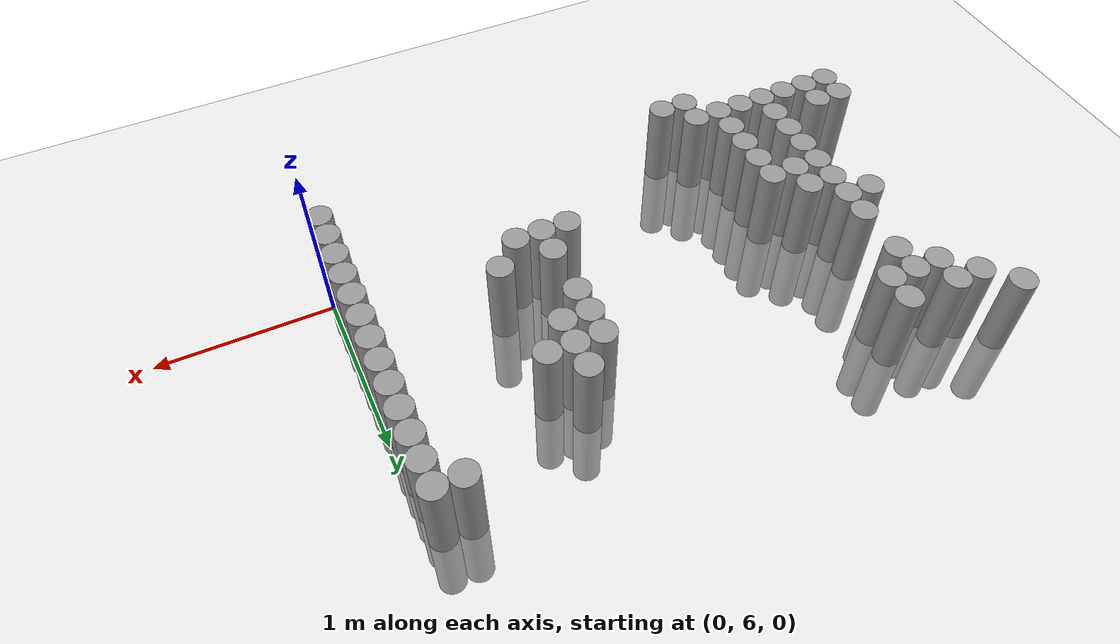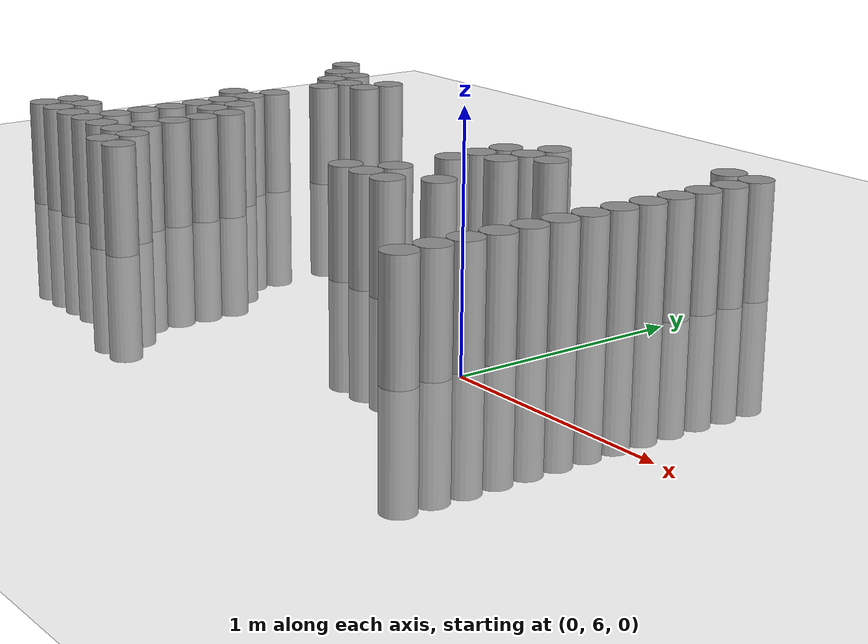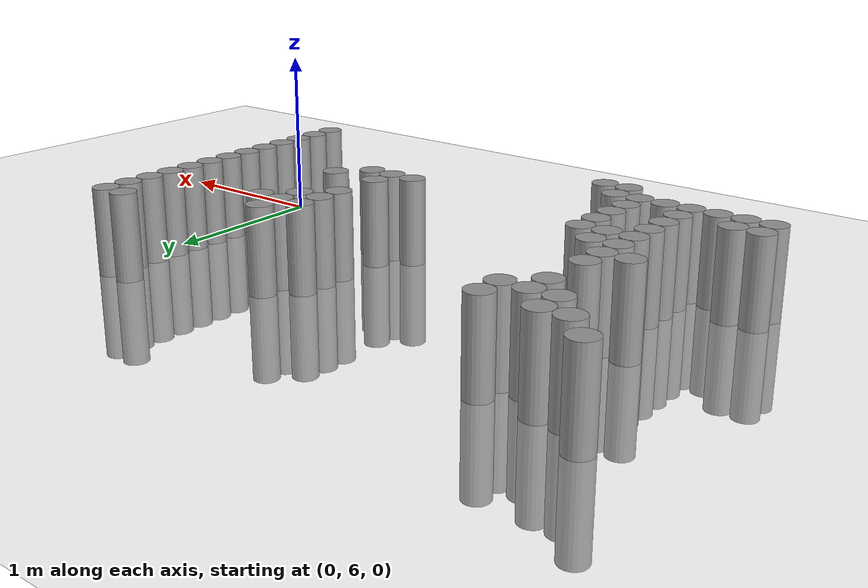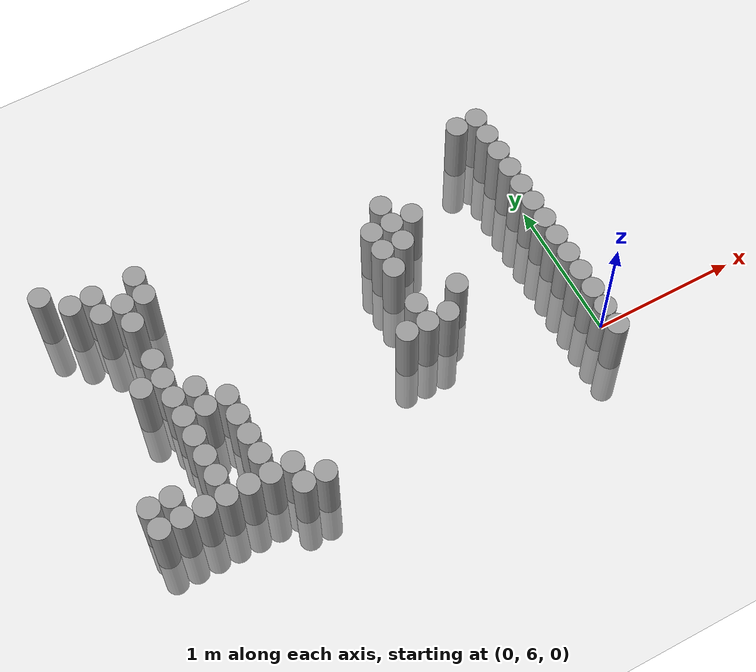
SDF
<sdf version="1.6">
 <world name="default">
  <model name="ground_plane">
   <static>1</static>
   <static>1</static>
   <link name="link">
    <collision name="collision">
     <geometry><plane><normal>0 0 1</normal><size>100 100</size></plane></geometry>
     <surface><friction><ode><mu>100</mu><mu2>50</mu2></ode></friction></surface>
    </collision>
    <visual name="visual">
     <cast_shadows>0</cast_shadows>
     <geometry><plane><normal>0 0 1</normal><size>100 100</size></plane></geometry>
     <material>
      <script><uri>file://media/materials/scripts/gazebo.material</uri><name>Gazebo/Grey</name></script>
     </material>
    </visual>
   </link>
  </model>
  <model name="unit_cylinder_172">
   <static>1</static>
   <pose>-3.225000 5.925000 0.000000 0.000000 0.000000 0.000000</pose>
   <link name="link">
    <inertial>
     <mass>1</mass>
     <inertia><ixx>0.145833</ixx><ixy>0</ixy><ixz>0</ixz><iyy>0.145833</iyy><iyz>0</iyz><izz>0.125</izz></inertia>
    </inertial>
    <collision name="collision">
     <geometry><cylinder><radius>0.075000</radius><length>1</length></cylinder></geometry>
    </collision>
    <visual name="visual">
     <geometry><cylinder><radius>0.075000</radius><length>1</length></cylinder></geometry>
     <material>
      <script><name>Gazebo/Grey</name><uri>file://media/materials/scripts/gazebo.material</uri></script>
     </material>
    </visual>
   </link>
  </model>
  <model name="unit_cylinder_173">
   <static>1</static>
   <pose>-3.225000 6.075000 0.000000 0.000000 0.000000 0.000000</pose>
   <link name="link">
    <inertial>
     <mass>1</mass>
     <inertia><ixx>0.145833</ixx><ixy>0</ixy><ixz>0</ixz><iyy>0.145833</iyy><iyz>0</iyz><izz>0.125</izz></inertia>
    </inertial>
    <collision name="collision">
     <geometry><cylinder><radius>0.075000</radius><length>1</length></cylinder></geometry>
    </collision>
    <visual name="visual">
     <geometry><cylinder><radius>0.075000</radius><length>1</length></cylinder></geometry>
     <material>
      <script><name>Gazebo/Grey</name><uri>file://media/materials/scripts/gazebo.material</uri></script>
     </material>
    </visual>
   </link>
  </model>
  <model name="unit_cylinder_174">
   <static>1</static>
   <pose>-3.225000 7.725000 0.000000 0.000000 0.000000 0.000000</pose>
   <link name="link">
    <inertial>
     <mass>1</mass>
     <inertia><ixx>0.145833</ixx><ixy>0</ixy><ixz>0</ixz><iyy>0.145833</iyy><iyz>0</iyz><izz>0.125</izz></inertia>
    </inertial>
    <collision name="collision">
     <geometry><cylinder><radius>0.075000</radius><length>1</length></cylinder></geometry>
    </collision>
    <visual name="visual">
     <geometry><cylinder><radius>0.075000</radius><length>1</length></cylinder></geometry>
     <material>
      <script><name>Gazebo/Grey</name><uri>file://media/materials/scripts/gazebo.material</uri></script>
     </material>
    </visual>
   </link>
  </model>
  <model name="unit_cylinder_181">
   <static>1</static>
   <pose>-3.075000 5.925000 0.000000 0.000000 0.000000 0.000000</pose>
   <link name="link">
    <inertial>
     <mass>1</mass>
     <inertia><ixx>0.145833</ixx><ixy>0</ixy><ixz>0</ixz><iyy>0.145833</iyy><iyz>0</iyz><izz>0.125</izz></inertia>
    </inertial>
    <collision name="collision">
     <geometry><cylinder><radius>0.075000</radius><length>1</length></cylinder></geometry>
    </collision>
    <visual name="visual">
     <geometry><cylinder><radius>0.075000</radius><length>1</length></cylinder></geometry>
     <material>
      <script><name>Gazebo/Grey</name><uri>file://media/materials/scripts/gazebo.material</uri></script>
     </material>
    </visual>
   </link>
  </model>
  <model name="unit_cylinder_182">
   <static>1</static>
   <pose>-3.075000 6.075000 0.000000 0.000000 0.000000 0.000000</pose>
   <link name="link">
    <inertial>
     <mass>1</mass>
     <inertia><ixx>0.145833</ixx><ixy>0</ixy><ixz>0</ixz><iyy>0.145833</iyy><iyz>0</iyz><izz>0.125</izz></inertia>
    </inertial>
    <collision name="collision">
     <geometry><cylinder><radius>0.075000</radius><length>1</length></cylinder></geometry>
    </collision>
    <visual name="visual">
     <geometry><cylinder><radius>0.075000</radius><length>1</length></cylinder></geometry>
     <material>
      <script><name>Gazebo/Grey</name><uri>file://media/materials/scripts/gazebo.material</uri></script>
     </material>
    </visual>
   </link>
  </model>
  <model name="unit_cylinder_183">
   <static>1</static>
   <pose>-3.075000 7.575000 0.000000 0.000000 0.000000 0.000000</pose>
   <link name="link">
    <inertial>
     <mass>1</mass>
     <inertia><ixx>0.145833</ixx><ixy>0</ixy><ixz>0</ixz><iyy>0.145833</iyy><iyz>0</iyz><izz>0.125</izz></inertia>
    </inertial>
    <collision name="collision">
     <geometry><cylinder><radius>0.075000</radius><length>1</length></cylinder></geometry>
    </collision>
    <visual name="visual">
     <geometry><cylinder><radius>0.075000</radius><length>1</length></cylinder></geometry>
     <material>
      <script><name>Gazebo/Grey</name><uri>file://media/materials/scripts/gazebo.material</uri></script>
     </material>
    </visual>
   </link>
  </model>
  <model name="unit_cylinder_188">
   <static>1</static>
   <pose>-2.925000 5.925000 0.000000 0.000000 0.000000 0.000000</pose>
   <link name="link">
    <inertial>
     <mass>1</mass>
     <inertia><ixx>0.145833</ixx><ixy>0</ixy><ixz>0</ixz><iyy>0.145833</iyy><iyz>0</iyz><izz>0.125</izz></inertia>
    </inertial>
    <collision name="collision">
     <geometry><cylinder><radius>0.075000</radius><length>1</length></cylinder></geometry>
    </collision>
    <visual name="visual">
     <geometry><cylinder><radius>0.075000</radius><length>1</length></cylinder></geometry>
     <material>
      <script><name>Gazebo/Grey</name><uri>file://media/materials/scripts/gazebo.material</uri></script>
     </material>
    </visual>
   </link>
  </model>
  <model name="unit_cylinder_189">
   <static>1</static>
   <pose>-2.925000 6.825000 0.000000 0.000000 0.000000 0.000000</pose>
   <link name="link">
    <inertial>
     <mass>1</mass>
     <inertia><ixx>0.145833</ixx><ixy>0</ixy><ixz>0</ixz><iyy>0.145833</iyy><iyz>0</iyz><izz>0.125</izz></inertia>
    </inertial>
    <collision name="collision">
     <geometry><cylinder><radius>0.075000</radius><length>1</length></cylinder></geometry>
    </collision>
    <visual name="visual">
     <geometry><cylinder><radius>0.075000</radius><length>1</length></cylinder></geometry>
     <material>
      <script><name>Gazebo/Grey</name><uri>file://media/materials/scripts/gazebo.material</uri></script>
     </material>
    </visual>
   </link>
  </model>
  <model name="unit_cylinder_190">
   <static>1</static>
   <pose>-2.925000 7.425000 0.000000 0.000000 0.000000 0.000000</pose>
   <link name="link">
    <inertial>
     <mass>1</mass>
     <inertia><ixx>0.145833</ixx><ixy>0</ixy><ixz>0</ixz><iyy>0.145833</iyy><iyz>0</iyz><izz>0.125</izz></inertia>
    </inertial>
    <collision name="collision">
     <geometry><cylinder><radius>0.075000</radius><length>1</length></cylinder></geometry>
    </collision>
    <visual name="visual">
     <geometry><cylinder><radius>0.075000</radius><length>1</length></cylinder></geometry>
     <material>
      <script><name>Gazebo/Grey</name><uri>file://media/materials/scripts/gazebo.material</uri></script>
     </material>
    </visual>
   </link>
  </model>
  <model name="unit_cylinder_191">
   <static>1</static>
   <pose>-2.925000 7.575000 0.000000 0.000000 0.000000 0.000000</pose>
   <link name="link">
    <inertial>
     <mass>1</mass>
     <inertia><ixx>0.145833</ixx><ixy>0</ixy><ixz>0</ixz><iyy>0.145833</iyy><iyz>0</iyz><izz>0.125</izz></inertia>
    </inertial>
    <collision name="collision">
     <geometry><cylinder><radius>0.075000</radius><length>1</length></cylinder></geometry>
    </collision>
    <visual name="visual">
     <geometry><cylinder><radius>0.075000</radius><length>1</length></cylinder></geometry>
     <material>
      <script><name>Gazebo/Grey</name><uri>file://media/materials/scripts/gazebo.material</uri></script>
     </material>
    </visual>
   </link>
  </model>
  <model name="unit_cylinder_194">
   <static>1</static>
   <pose>-2.775000 5.925000 0.000000 0.000000 0.000000 0.000000</pose>
   <link name="link">
    <inertial>
     <mass>1</mass>
     <inertia><ixx>0.145833</ixx><ixy>0</ixy><ixz>0</ixz><iyy>0.145833</iyy><iyz>0</iyz><izz>0.125</izz></inertia>
    </inertial>
    <collision name="collision">
     <geometry><cylinder><radius>0.075000</radius><length>1</length></cylinder></geometry>
    </collision>
    <visual name="visual">
     <geometry><cylinder><radius>0.075000</radius><length>1</length></cylinder></geometry>
     <material>
      <script><name>Gazebo/Grey</name><uri>file://media/materials/scripts/gazebo.material</uri></script>
     </material>
    </visual>
   </link>
  </model>
  <model name="unit_cylinder_195">
   <static>1</static>
   <pose>-2.775000 6.075000 0.000000 0.000000 0.000000 0.000000</pose>
   <link name="link">
    <inertial>
     <mass>1</mass>
     <inertia><ixx>0.145833</ixx><ixy>0</ixy><ixz>0</ixz><iyy>0.145833</iyy><iyz>0</iyz><izz>0.125</izz></inertia>
    </inertial>
    <collision name="collision">
     <geometry><cylinder><radius>0.075000</radius><length>1</length></cylinder></geometry>
    </collision>
    <visual name="visual">
     <geometry><cylinder><radius>0.075000</radius><length>1</length></cylinder></geometry>
     <material>
      <script><name>Gazebo/Grey</name><uri>file://media/materials/scripts/gazebo.material</uri></script>
     </material>
    </visual>
   </link>
  </model>
  <model name="unit_cylinder_196">
   <static>1</static>
   <pose>-2.775000 6.225000 0.000000 0.000000 0.000000 0.000000</pose>
   <link name="link">
    <inertial>
     <mass>1</mass>
     <inertia><ixx>0.145833</ixx><ixy>0</ixy><ixz>0</ixz><iyy>0.145833</iyy><iyz>0</iyz><izz>0.125</izz></inertia>
    </inertial>
    <collision name="collision">
     <geometry><cylinder><radius>0.075000</radius><length>1</length></cylinder></geometry>
    </collision>
    <visual name="visual">
     <geometry><cylinder><radius>0.075000</radius><length>1</length></cylinder></geometry>
     <material>
      <script><name>Gazebo/Grey</name><uri>file://media/materials/scripts/gazebo.material</uri></script>
     </material>
    </visual>
   </link>
  </model>
  <model name="unit_cylinder_197">
   <static>1</static>
   <pose>-2.775000 6.375000 0.000000 0.000000 0.000000 0.000000</pose>
   <link name="link">
    <inertial>
     <mass>1</mass>
     <inertia><ixx>0.145833</ixx><ixy>0</ixy><ixz>0</ixz><iyy>0.145833</iyy><iyz>0</iyz><izz>0.125</izz></inertia>
    </inertial>
    <collision name="collision">
     <geometry><cylinder><radius>0.075000</radius><length>1</length></cylinder></geometry>
    </collision>
    <visual name="visual">
     <geometry><cylinder><radius>0.075000</radius><length>1</length></cylinder></geometry>
     <material>
      <script><name>Gazebo/Grey</name><uri>file://media/materials/scripts/gazebo.material</uri></script>
     </material>
    </visual>
   </link>
  </model>
  <model name="unit_cylinder_198">
   <static>1</static>
   <pose>-2.775000 6.525000 0.000000 0.000000 0.000000 0.000000</pose>
   <link name="link">
    <inertial>
     <mass>1</mass>
     <inertia><ixx>0.145833</ixx><ixy>0</ixy><ixz>0</ixz><iyy>0.145833</iyy><iyz>0</iyz><izz>0.125</izz></inertia>
    </inertial>
    <collision name="collision">
     <geometry><cylinder><radius>0.075000</radius><length>1</length></cylinder></geometry>
    </collision>
    <visual name="visual">
     <geometry><cylinder><radius>0.075000</radius><length>1</length></cylinder></geometry>
     <material>
      <script><name>Gazebo/Grey</name><uri>file://media/materials/scripts/gazebo.material</uri></script>
     </material>
    </visual>
   </link>
  </model>
  <model name="unit_cylinder_199">
   <static>1</static>
   <pose>-2.775000 6.675000 0.000000 0.000000 0.000000 0.000000</pose>
   <link name="link">
    <inertial>
     <mass>1</mass>
     <inertia><ixx>0.145833</ixx><ixy>0</ixy><ixz>0</ixz><iyy>0.145833</iyy><iyz>0</iyz><izz>0.125</izz></inertia>
    </inertial>
    <collision name="collision">
     <geometry><cylinder><radius>0.075000</radius><length>1</length></cylinder></geometry>
    </collision>
    <visual name="visual">
     <geometry><cylinder><radius>0.075000</radius><length>1</length></cylinder></geometry>
     <material>
      <script><name>Gazebo/Grey</name><uri>file://media/materials/scripts/gazebo.material</uri></script>
     </material>
    </visual>
   </link>
  </model>
  <model name="unit_cylinder_200">
   <static>1</static>
   <pose>-2.775000 6.825000 0.000000 0.000000 0.000000 0.000000</pose>
   <link name="link">
    <inertial>
     <mass>1</mass>
     <inertia><ixx>0.145833</ixx><ixy>0</ixy><ixz>0</ixz><iyy>0.145833</iyy><iyz>0</iyz><izz>0.125</izz></inertia>
    </inertial>
    <collision name="collision">
     <geometry><cylinder><radius>0.075000</radius><length>1</length></cylinder></geometry>
    </collision>
    <visual name="visual">
     <geometry><cylinder><radius>0.075000</radius><length>1</length></cylinder></geometry>
     <material>
      <script><name>Gazebo/Grey</name><uri>file://media/materials/scripts/gazebo.material</uri></script>
     </material>
    </visual>
   </link>
  </model>
  <model name="unit_cylinder_201">
   <static>1</static>
   <pose>-2.775000 6.975000 0.000000 0.000000 0.000000 0.000000</pose>
   <link name="link">
    <inertial>
     <mass>1</mass>
     <inertia><ixx>0.145833</ixx><ixy>0</ixy><ixz>0</ixz><iyy>0.145833</iyy><iyz>0</iyz><izz>0.125</izz></inertia>
    </inertial>
    <collision name="collision">
     <geometry><cylinder><radius>0.075000</radius><length>1</length></cylinder></geometry>
    </collision>
    <visual name="visual">
     <geometry><cylinder><radius>0.075000</radius><length>1</length></cylinder></geometry>
     <material>
      <script><name>Gazebo/Grey</name><uri>file://media/materials/scripts/gazebo.material</uri></script>
     </material>
    </visual>
   </link>
  </model>
  <model name="unit_cylinder_202">
   <static>1</static>
   <pose>-2.775000 7.275000 0.000000 0.000000 0.000000 0.000000</pose>
   <link name="link">
    <inertial>
     <mass>1</mass>
     <inertia><ixx>0.145833</ixx><ixy>0</ixy><ixz>0</ixz><iyy>0.145833</iyy><iyz>0</iyz><izz>0.125</izz></inertia>
    </inertial>
    <collision name="collision">
     <geometry><cylinder><radius>0.075000</radius><length>1</length></cylinder></geometry>
    </collision>
    <visual name="visual">
     <geometry><cylinder><radius>0.075000</radius><length>1</length></cylinder></geometry>
     <material>
      <script><name>Gazebo/Grey</name><uri>file://media/materials/scripts/gazebo.material</uri></script>
     </material>
    </visual>
   </link>
  </model>
  <model name="unit_cylinder_203">
   <static>1</static>
   <pose>-2.775000 7.425000 0.000000 0.000000 0.000000 0.000000</pose>
   <link name="link">
    <inertial>
     <mass>1</mass>
     <inertia><ixx>0.145833</ixx><ixy>0</ixy><ixz>0</ixz><iyy>0.145833</iyy><iyz>0</iyz><izz>0.125</izz></inertia>
    </inertial>
    <collision name="collision">
     <geometry><cylinder><radius>0.075000</radius><length>1</length></cylinder></geometry>
    </collision>
    <visual name="visual">
     <geometry><cylinder><radius>0.075000</radius><length>1</length></cylinder></geometry>
     <material>
      <script><name>Gazebo/Grey</name><uri>file://media/materials/scripts/gazebo.material</uri></script>
     </material>
    </visual>
   </link>
  </model>
  <model name="unit_cylinder_211">
   <static>1</static>
   <pose>-2.625000 5.925000 0.000000 0.000000 0.000000 0.000000</pose>
   <link name="link">
    <inertial>
     <mass>1</mass>
     <inertia><ixx>0.145833</ixx><ixy>0</ixy><ixz>0</ixz><iyy>0.145833</iyy><iyz>0</iyz><izz>0.125</izz></inertia>
    </inertial>
    <collision name="collision">
     <geometry><cylinder><radius>0.075000</radius><length>1</length></cylinder></geometry>
    </collision>
    <visual name="visual">
     <geometry><cylinder><radius>0.075000</radius><length>1</length></cylinder></geometry>
     <material>
      <script><name>Gazebo/Grey</name><uri>file://media/materials/scripts/gazebo.material</uri></script>
     </material>
    </visual>
   </link>
  </model>
  <model name="unit_cylinder_212">
   <static>1</static>
   <pose>-2.625000 6.525000 0.000000 0.000000 0.000000 0.000000</pose>
   <link name="link">
    <inertial>
     <mass>1</mass>
     <inertia><ixx>0.145833</ixx><ixy>0</ixy><ixz>0</ixz><iyy>0.145833</iyy><iyz>0</iyz><izz>0.125</izz></inertia>
    </inertial>
    <collision name="collision">
     <geometry><cylinder><radius>0.075000</radius><length>1</length></cylinder></geometry>
    </collision>
    <visual name="visual">
     <geometry><cylinder><radius>0.075000</radius><length>1</length></cylinder></geometry>
     <material>
      <script><name>Gazebo/Grey</name><uri>file://media/materials/scripts/gazebo.material</uri></script>
     </material>
    </visual>
   </link>
  </model>
  <model name="unit_cylinder_213">
   <static>1</static>
   <pose>-2.625000 6.675000 0.000000 0.000000 0.000000 0.000000</pose>
   <link name="link">
    <inertial>
     <mass>1</mass>
     <inertia><ixx>0.145833</ixx><ixy>0</ixy><ixz>0</ixz><iyy>0.145833</iyy><iyz>0</iyz><izz>0.125</izz></inertia>
    </inertial>
    <collision name="collision">
     <geometry><cylinder><radius>0.075000</radius><length>1</length></cylinder></geometry>
    </collision>
    <visual name="visual">
     <geometry><cylinder><radius>0.075000</radius><length>1</length></cylinder></geometry>
     <material>
      <script><name>Gazebo/Grey</name><uri>file://media/materials/scripts/gazebo.material</uri></script>
     </material>
    </visual>
   </link>
  </model>
  <model name="unit_cylinder_214">
   <static>1</static>
   <pose>-2.625000 7.425000 0.000000 0.000000 0.000000 0.000000</pose>
   <link name="link">
    <inertial>
     <mass>1</mass>
     <inertia><ixx>0.145833</ixx><ixy>0</ixy><ixz>0</ixz><iyy>0.145833</iyy><iyz>0</iyz><izz>0.125</izz></inertia>
    </inertial>
    <collision name="collision">
     <geometry><cylinder><radius>0.075000</radius><length>1</length></cylinder></geometry>
    </collision>
    <visual name="visual">
     <geometry><cylinder><radius>0.075000</radius><length>1</length></cylinder></geometry>
     <material>
      <script><name>Gazebo/Grey</name><uri>file://media/materials/scripts/gazebo.material</uri></script>
     </material>
    </visual>
   </link>
  </model>
  <model name="unit_cylinder_215">
   <static>1</static>
   <pose>-2.625000 7.575000 0.000000 0.000000 0.000000 0.000000</pose>
   <link name="link">
    <inertial>
     <mass>1</mass>
     <inertia><ixx>0.145833</ixx><ixy>0</ixy><ixz>0</ixz><iyy>0.145833</iyy><iyz>0</iyz><izz>0.125</izz></inertia>
    </inertial>
    <collision name="collision">
     <geometry><cylinder><radius>0.075000</radius><length>1</length></cylinder></geometry>
    </collision>
    <visual name="visual">
     <geometry><cylinder><radius>0.075000</radius><length>1</length></cylinder></geometry>
     <material>
      <script><name>Gazebo/Grey</name><uri>file://media/materials/scripts/gazebo.material</uri></script>
     </material>
    </visual>
   </link>
  </model>
  <model name="unit_cylinder_221">
   <static>1</static>
   <pose>-2.475000 5.925000 0.000000 0.000000 0.000000 0.000000</pose>
   <link name="link">
    <inertial>
     <mass>1</mass>
     <inertia><ixx>0.145833</ixx><ixy>0</ixy><ixz>0</ixz><iyy>0.145833</iyy><iyz>0</iyz><izz>0.125</izz></inertia>
    </inertial>
    <collision name="collision">
     <geometry><cylinder><radius>0.075000</radius><length>1</length></cylinder></geometry>
    </collision>
    <visual name="visual">
     <geometry><cylinder><radius>0.075000</radius><length>1</length></cylinder></geometry>
     <material>
      <script><name>Gazebo/Grey</name><uri>file://media/materials/scripts/gazebo.material</uri></script>
     </material>
    </visual>
   </link>
  </model>
  <model name="unit_cylinder_222">
   <static>1</static>
   <pose>-2.475000 6.075000 0.000000 0.000000 0.000000 0.000000</pose>
   <link name="link">
    <inertial>
     <mass>1</mass>
     <inertia><ixx>0.145833</ixx><ixy>0</ixy><ixz>0</ixz><iyy>0.145833</iyy><iyz>0</iyz><izz>0.125</izz></inertia>
    </inertial>
    <collision name="collision">
     <geometry><cylinder><radius>0.075000</radius><length>1</length></cylinder></geometry>
    </collision>
    <visual name="visual">
     <geometry><cylinder><radius>0.075000</radius><length>1</length></cylinder></geometry>
     <material>
      <script><name>Gazebo/Grey</name><uri>file://media/materials/scripts/gazebo.material</uri></script>
     </material>
    </visual>
   </link>
  </model>
  <model name="unit_cylinder_223">
   <static>1</static>
   <pose>-2.475000 6.225000 0.000000 0.000000 0.000000 0.000000</pose>
   <link name="link">
    <inertial>
     <mass>1</mass>
     <inertia><ixx>0.145833</ixx><ixy>0</ixy><ixz>0</ixz><iyy>0.145833</iyy><iyz>0</iyz><izz>0.125</izz></inertia>
    </inertial>
    <collision name="collision">
     <geometry><cylinder><radius>0.075000</radius><length>1</length></cylinder></geometry>
    </collision>
    <visual name="visual">
     <geometry><cylinder><radius>0.075000</radius><length>1</length></cylinder></geometry>
     <material>
      <script><name>Gazebo/Grey</name><uri>file://media/materials/scripts/gazebo.material</uri></script>
     </material>
    </visual>
   </link>
  </model>
  <model name="unit_cylinder_224">
   <static>1</static>
   <pose>-2.475000 6.375000 0.000000 0.000000 0.000000 0.000000</pose>
   <link name="link">
    <inertial>
     <mass>1</mass>
     <inertia><ixx>0.145833</ixx><ixy>0</ixy><ixz>0</ixz><iyy>0.145833</iyy><iyz>0</iyz><izz>0.125</izz></inertia>
    </inertial>
    <collision name="collision">
     <geometry><cylinder><radius>0.075000</radius><length>1</length></cylinder></geometry>
    </collision>
    <visual name="visual">
     <geometry><cylinder><radius>0.075000</radius><length>1</length></cylinder></geometry>
     <material>
      <script><name>Gazebo/Grey</name><uri>file://media/materials/scripts/gazebo.material</uri></script>
     </material>
    </visual>
   </link>
  </model>
  <model name="unit_cylinder_225">
   <static>1</static>
   <pose>-2.475000 6.525000 0.000000 0.000000 0.000000 0.000000</pose>
   <link name="link">
    <inertial>
     <mass>1</mass>
     <inertia><ixx>0.145833</ixx><ixy>0</ixy><ixz>0</ixz><iyy>0.145833</iyy><iyz>0</iyz><izz>0.125</izz></inertia>
    </inertial>
    <collision name="collision">
     <geometry><cylinder><radius>0.075000</radius><length>1</length></cylinder></geometry>
    </collision>
    <visual name="visual">
     <geometry><cylinder><radius>0.075000</radius><length>1</length></cylinder></geometry>
     <material>
      <script><name>Gazebo/Grey</name><uri>file://media/materials/scripts/gazebo.material</uri></script>
     </material>
    </visual>
   </link>
  </model>
  <model name="unit_cylinder_228">
   <static>1</static>
   <pose>-2.325000 5.775000 0.000000 0.000000 0.000000 0.000000</pose>
   <link name="link">
    <inertial>
     <mass>1</mass>
     <inertia><ixx>0.145833</ixx><ixy>0</ixy><ixz>0</ixz><iyy>0.145833</iyy><iyz>0</iyz><izz>0.125</izz></inertia>
    </inertial>
    <collision name="collision">
     <geometry><cylinder><radius>0.075000</radius><length>1</length></cylinder></geometry>
    </collision>
    <visual name="visual">
     <geometry><cylinder><radius>0.075000</radius><length>1</length></cylinder></geometry>
     <material>
      <script><name>Gazebo/Grey</name><uri>file://media/materials/scripts/gazebo.material</uri></script>
     </material>
    </visual>
   </link>
  </model>
  <model name="unit_cylinder_229">
   <static>1</static>
   <pose>-2.325000 5.925000 0.000000 0.000000 0.000000 0.000000</pose>
   <link name="link">
    <inertial>
     <mass>1</mass>
     <inertia><ixx>0.145833</ixx><ixy>0</ixy><ixz>0</ixz><iyy>0.145833</iyy><iyz>0</iyz><izz>0.125</izz></inertia>
    </inertial>
    <collision name="collision">
     <geometry><cylinder><radius>0.075000</radius><length>1</length></cylinder></geometry>
    </collision>
    <visual name="visual">
     <geometry><cylinder><radius>0.075000</radius><length>1</length></cylinder></geometry>
     <material>
      <script><name>Gazebo/Grey</name><uri>file://media/materials/scripts/gazebo.material</uri></script>
     </material>
    </visual>
   </link>
  </model>
  <model name="unit_cylinder_230">
   <static>1</static>
   <pose>-2.175000 5.775000 0.000000 0.000000 0.000000 0.000000</pose>
   <link name="link">
    <inertial>
     <mass>1</mass>
     <inertia><ixx>0.145833</ixx><ixy>0</ixy><ixz>0</ixz><iyy>0.145833</iyy><iyz>0</iyz><izz>0.125</izz></inertia>
    </inertial>
    <collision name="collision">
     <geometry><cylinder><radius>0.075000</radius><length>1</length></cylinder></geometry>
    </collision>
    <visual name="visual">
     <geometry><cylinder><radius>0.075000</radius><length>1</length></cylinder></geometry>
     <material>
      <script><name>Gazebo/Grey</name><uri>file://media/materials/scripts/gazebo.material</uri></script>
     </material>
    </visual>
   </link>
  </model>
  <model name="unit_cylinder_234">
   <static>1</static>
   <pose>-1.275000 6.375000 0.000000 0.000000 0.000000 0.000000</pose>
   <link name="link">
    <inertial>
     <mass>1</mass>
     <inertia><ixx>0.145833</ixx><ixy>0</ixy><ixz>0</ixz><iyy>0.145833</iyy><iyz>0</iyz><izz>0.125</izz></inertia>
    </inertial>
    <collision name="collision">
     <geometry><cylinder><radius>0.075000</radius><length>1</length></cylinder></geometry>
    </collision>
    <visual name="visual">
     <geometry><cylinder><radius>0.075000</radius><length>1</length></cylinder></geometry>
     <material>
      <script><name>Gazebo/Grey</name><uri>file://media/materials/scripts/gazebo.material</uri></script>
     </material>
    </visual>
   </link>
  </model>
  <model name="unit_cylinder_235">
   <static>1</static>
   <pose>-1.125000 6.375000 0.000000 0.000000 0.000000 0.000000</pose>
   <link name="link">
    <inertial>
     <mass>1</mass>
     <inertia><ixx>0.145833</ixx><ixy>0</ixy><ixz>0</ixz><iyy>0.145833</iyy><iyz>0</iyz><izz>0.125</izz></inertia>
    </inertial>
    <collision name="collision">
     <geometry><cylinder><radius>0.075000</radius><length>1</length></cylinder></geometry>
    </collision>
    <visual name="visual">
     <geometry><cylinder><radius>0.075000</radius><length>1</length></cylinder></geometry>
     <material>
      <script><name>Gazebo/Grey</name><uri>file://media/materials/scripts/gazebo.material</uri></script>
     </material>
    </visual>
   </link>
  </model>
  <model name="unit_cylinder_236">
   <static>1</static>
   <pose>-1.125000 6.525000 0.000000 0.000000 0.000000 0.000000</pose>
   <link name="link">
    <inertial>
     <mass>1</mass>
     <inertia><ixx>0.145833</ixx><ixy>0</ixy><ixz>0</ixz><iyy>0.145833</iyy><iyz>0</iyz><izz>0.125</izz></inertia>
    </inertial>
    <collision name="collision">
     <geometry><cylinder><radius>0.075000</radius><length>1</length></cylinder></geometry>
    </collision>
    <visual name="visual">
     <geometry><cylinder><radius>0.075000</radius><length>1</length></cylinder></geometry>
     <material>
      <script><name>Gazebo/Grey</name><uri>file://media/materials/scripts/gazebo.material</uri></script>
     </material>
    </visual>
   </link>
  </model>
  <model name="unit_cylinder_237">
   <static>1</static>
   <pose>-1.125000 6.825000 0.000000 0.000000 0.000000 0.000000</pose>
   <link name="link">
    <inertial>
     <mass>1</mass>
     <inertia><ixx>0.145833</ixx><ixy>0</ixy><ixz>0</ixz><iyy>0.145833</iyy><iyz>0</iyz><izz>0.125</izz></inertia>
    </inertial>
    <collision name="collision">
     <geometry><cylinder><radius>0.075000</radius><length>1</length></cylinder></geometry>
    </collision>
    <visual name="visual">
     <geometry><cylinder><radius>0.075000</radius><length>1</length></cylinder></geometry>
     <material>
      <script><name>Gazebo/Grey</name><uri>file://media/materials/scripts/gazebo.material</uri></script>
     </material>
    </visual>
   </link>
  </model>
  <model name="unit_cylinder_238">
   <static>1</static>
   <pose>-1.125000 6.975000 0.000000 0.000000 0.000000 0.000000</pose>
   <link name="link">
    <inertial>
     <mass>1</mass>
     <inertia><ixx>0.145833</ixx><ixy>0</ixy><ixz>0</ixz><iyy>0.145833</iyy><iyz>0</iyz><izz>0.125</izz></inertia>
    </inertial>
    <collision name="collision">
     <geometry><cylinder><radius>0.075000</radius><length>1</length></cylinder></geometry>
    </collision>
    <visual name="visual">
     <geometry><cylinder><radius>0.075000</radius><length>1</length></cylinder></geometry>
     <material>
      <script><name>Gazebo/Grey</name><uri>file://media/materials/scripts/gazebo.material</uri></script>
     </material>
    </visual>
   </link>
  </model>
  <model name="unit_cylinder_239">
   <static>1</static>
   <pose>-1.125000 7.125000 0.000000 0.000000 0.000000 0.000000</pose>
   <link name="link">
    <inertial>
     <mass>1</mass>
     <inertia><ixx>0.145833</ixx><ixy>0</ixy><ixz>0</ixz><iyy>0.145833</iyy><iyz>0</iyz><izz>0.125</izz></inertia>
    </inertial>
    <collision name="collision">
     <geometry><cylinder><radius>0.075000</radius><length>1</length></cylinder></geometry>
    </collision>
    <visual name="visual">
     <geometry><cylinder><radius>0.075000</radius><length>1</length></cylinder></geometry>
     <material>
      <script><name>Gazebo/Grey</name><uri>file://media/materials/scripts/gazebo.material</uri></script>
     </material>
    </visual>
   </link>
  </model>
  <model name="unit_cylinder_240">
   <static>1</static>
   <pose>-0.975000 6.375000 0.000000 0.000000 0.000000 0.000000</pose>
   <link name="link">
    <inertial>
     <mass>1</mass>
     <inertia><ixx>0.145833</ixx><ixy>0</ixy><ixz>0</ixz><iyy>0.145833</iyy><iyz>0</iyz><izz>0.125</izz></inertia>
    </inertial>
    <collision name="collision">
     <geometry><cylinder><radius>0.075000</radius><length>1</length></cylinder></geometry>
    </collision>
    <visual name="visual">
     <geometry><cylinder><radius>0.075000</radius><length>1</length></cylinder></geometry>
     <material>
      <script><name>Gazebo/Grey</name><uri>file://media/materials/scripts/gazebo.material</uri></script>
     </material>
    </visual>
   </link>
  </model>
  <model name="unit_cylinder_241">
   <static>1</static>
   <pose>-0.975000 6.975000 0.000000 0.000000 0.000000 0.000000</pose>
   <link name="link">
    <inertial>
     <mass>1</mass>
     <inertia><ixx>0.145833</ixx><ixy>0</ixy><ixz>0</ixz><iyy>0.145833</iyy><iyz>0</iyz><izz>0.125</izz></inertia>
    </inertial>
    <collision name="collision">
     <geometry><cylinder><radius>0.075000</radius><length>1</length></cylinder></geometry>
    </collision>
    <visual name="visual">
     <geometry><cylinder><radius>0.075000</radius><length>1</length></cylinder></geometry>
     <material>
      <script><name>Gazebo/Grey</name><uri>file://media/materials/scripts/gazebo.material</uri></script>
     </material>
    </visual>
   </link>
  </model>
  <model name="unit_cylinder_242">
   <static>1</static>
   <pose>-0.975000 7.125000 0.000000 0.000000 0.000000 0.000000</pose>
   <link name="link">
    <inertial>
     <mass>1</mass>
     <inertia><ixx>0.145833</ixx><ixy>0</ixy><ixz>0</ixz><iyy>0.145833</iyy><iyz>0</iyz><izz>0.125</izz></inertia>
    </inertial>
    <collision name="collision">
     <geometry><cylinder><radius>0.075000</radius><length>1</length></cylinder></geometry>
    </collision>
    <visual name="visual">
     <geometry><cylinder><radius>0.075000</radius><length>1</length></cylinder></geometry>
     <material>
      <script><name>Gazebo/Grey</name><uri>file://media/materials/scripts/gazebo.material</uri></script>
     </material>
    </visual>
   </link>
  </model>
  <model name="unit_cylinder_243">
   <static>1</static>
   <pose>-0.975000 7.275000 0.000000 0.000000 0.000000 0.000000</pose>
   <link name="link">
    <inertial>
     <mass>1</mass>
     <inertia><ixx>0.145833</ixx><ixy>0</ixy><ixz>0</ixz><iyy>0.145833</iyy><iyz>0</iyz><izz>0.125</izz></inertia>
    </inertial>
    <collision name="collision">
     <geometry><cylinder><radius>0.075000</radius><length>1</length></cylinder></geometry>
    </collision>
    <visual name="visual">
     <geometry><cylinder><radius>0.075000</radius><length>1</length></cylinder></geometry>
     <material>
      <script><name>Gazebo/Grey</name><uri>file://media/materials/scripts/gazebo.material</uri></script>
     </material>
    </visual>
   </link>
  </model>
  <model name="unit_cylinder_244">
   <static>1</static>
   <pose>-0.825000 6.525000 0.000000 0.000000 0.000000 0.000000</pose>
   <link name="link">
    <inertial>
     <mass>1</mass>
     <inertia><ixx>0.145833</ixx><ixy>0</ixy><ixz>0</ixz><iyy>0.145833</iyy><iyz>0</iyz><izz>0.125</izz></inertia>
    </inertial>
    <collision name="collision">
     <geometry><cylinder><radius>0.075000</radius><length>1</length></cylinder></geometry>
    </collision>
    <visual name="visual">
     <geometry><cylinder><radius>0.075000</radius><length>1</length></cylinder></geometry>
     <material>
      <script><name>Gazebo/Grey</name><uri>file://media/materials/scripts/gazebo.material</uri></script>
     </material>
    </visual>
   </link>
  </model>
  <model name="unit_cylinder_245">
   <static>1</static>
   <pose>-0.825000 7.125000 0.000000 0.000000 0.000000 0.000000</pose>
   <link name="link">
    <inertial>
     <mass>1</mass>
     <inertia><ixx>0.145833</ixx><ixy>0</ixy><ixz>0</ixz><iyy>0.145833</iyy><iyz>0</iyz><izz>0.125</izz></inertia>
    </inertial>
    <collision name="collision">
     <geometry><cylinder><radius>0.075000</radius><length>1</length></cylinder></geometry>
    </collision>
    <visual name="visual">
     <geometry><cylinder><radius>0.075000</radius><length>1</length></cylinder></geometry>
     <material>
      <script><name>Gazebo/Grey</name><uri>file://media/materials/scripts/gazebo.material</uri></script>
     </material>
    </visual>
   </link>
  </model>
  <model name="unit_cylinder_255">
   <static>1</static>
   <pose>-0.225000 7.575000 0.000000 0.000000 0.000000 0.000000</pose>
   <link name="link">
    <inertial>
     <mass>1</mass>
     <inertia><ixx>0.145833</ixx><ixy>0</ixy><ixz>0</ixz><iyy>0.145833</iyy><iyz>0</iyz><izz>0.125</izz></inertia>
    </inertial>
    <collision name="collision">
     <geometry><cylinder><radius>0.075000</radius><length>1</length></cylinder></geometry>
    </collision>
    <visual name="visual">
     <geometry><cylinder><radius>0.075000</radius><length>1</length></cylinder></geometry>
     <material>
      <script><name>Gazebo/Grey</name><uri>file://media/materials/scripts/gazebo.material</uri></script>
     </material>
    </visual>
   </link>
  </model>
  <model name="unit_cylinder_269">
   <static>1</static>
   <pose>-0.075000 5.775000 0.000000 0.000000 0.000000 0.000000</pose>
   <link name="link">
    <inertial>
     <mass>1</mass>
     <inertia><ixx>0.145833</ixx><ixy>0</ixy><ixz>0</ixz><iyy>0.145833</iyy><iyz>0</iyz><izz>0.125</izz></inertia>
    </inertial>
    <collision name="collision">
     <geometry><cylinder><radius>0.075000</radius><length>1</length></cylinder></geometry>
    </collision>
    <visual name="visual">
     <geometry><cylinder><radius>0.075000</radius><length>1</length></cylinder></geometry>
     <material>
      <script><name>Gazebo/Grey</name><uri>file://media/materials/scripts/gazebo.material</uri></script>
     </material>
    </visual>
   </link>
  </model>
  <model name="unit_cylinder_270">
   <static>1</static>
   <pose>-0.075000 5.925000 0.000000 0.000000 0.000000 0.000000</pose>
   <link name="link">
    <inertial>
     <mass>1</mass>
     <inertia><ixx>0.145833</ixx><ixy>0</ixy><ixz>0</ixz><iyy>0.145833</iyy><iyz>0</iyz><izz>0.125</izz></inertia>
    </inertial>
    <collision name="collision">
     <geometry><cylinder><radius>0.075000</radius><length>1</length></cylinder></geometry>
    </collision>
    <visual name="visual">
     <geometry><cylinder><radius>0.075000</radius><length>1</length></cylinder></geometry>
     <material>
      <script><name>Gazebo/Grey</name><uri>file://media/materials/scripts/gazebo.material</uri></script>
     </material>
    </visual>
   </link>
  </model>
  <model name="unit_cylinder_271">
   <static>1</static>
   <pose>-0.075000 6.075000 0.000000 0.000000 0.000000 0.000000</pose>
   <link name="link">
    <inertial>
     <mass>1</mass>
     <inertia><ixx>0.145833</ixx><ixy>0</ixy><ixz>0</ixz><iyy>0.145833</iyy><iyz>0</iyz><izz>0.125</izz></inertia>
    </inertial>
    <collision name="collision">
     <geometry><cylinder><radius>0.075000</radius><length>1</length></cylinder></geometry>
    </collision>
    <visual name="visual">
     <geometry><cylinder><radius>0.075000</radius><length>1</length></cylinder></geometry>
     <material>
      <script><name>Gazebo/Grey</name><uri>file://media/materials/scripts/gazebo.material</uri></script>
     </material>
    </visual>
   </link>
  </model>
  <model name="unit_cylinder_272">
   <static>1</static>
   <pose>-0.075000 6.225000 0.000000 0.000000 0.000000 0.000000</pose>
   <link name="link">
    <inertial>
     <mass>1</mass>
     <inertia><ixx>0.145833</ixx><ixy>0</ixy><ixz>0</ixz><iyy>0.145833</iyy><iyz>0</iyz><izz>0.125</izz></inertia>
    </inertial>
    <collision name="collision">
     <geometry><cylinder><radius>0.075000</radius><length>1</length></cylinder></geometry>
    </collision>
    <visual name="visual">
     <geometry><cylinder><radius>0.075000</radius><length>1</length></cylinder></geometry>
     <material>
      <script><name>Gazebo/Grey</name><uri>file://media/materials/scripts/gazebo.material</uri></script>
     </material>
    </visual>
   </link>
  </model>
  <model name="unit_cylinder_273">
   <static>1</static>
   <pose>-0.075000 6.375000 0.000000 0.000000 0.000000 0.000000</pose>
   <link name="link">
    <inertial>
     <mass>1</mass>
     <inertia><ixx>0.145833</ixx><ixy>0</ixy><ixz>0</ixz><iyy>0.145833</iyy><iyz>0</iyz><izz>0.125</izz></inertia>
    </inertial>
    <collision name="collision">
     <geometry><cylinder><radius>0.075000</radius><length>1</length></cylinder></geometry>
    </collision>
    <visual name="visual">
     <geometry><cylinder><radius>0.075000</radius><length>1</length></cylinder></geometry>
     <material>
      <script><name>Gazebo/Grey</name><uri>file://media/materials/scripts/gazebo.material</uri></script>
     </material>
    </visual>
   </link>
  </model>
  <model name="unit_cylinder_274">
   <static>1</static>
   <pose>-0.075000 6.525000 0.000000 0.000000 0.000000 0.000000</pose>
   <link name="link">
    <inertial>
     <mass>1</mass>
     <inertia><ixx>0.145833</ixx><ixy>0</ixy><ixz>0</ixz><iyy>0.145833</iyy><iyz>0</iyz><izz>0.125</izz></inertia>
    </inertial>
    <collision name="collision">
     <geometry><cylinder><radius>0.075000</radius><length>1</length></cylinder></geometry>
    </collision>
    <visual name="visual">
     <geometry><cylinder><radius>0.075000</radius><length>1</length></cylinder></geometry>
     <material>
      <script><name>Gazebo/Grey</name><uri>file://media/materials/scripts/gazebo.material</uri></script>
     </material>
    </visual>
   </link>
  </model>
  <model name="unit_cylinder_275">
   <static>1</static>
   <pose>-0.075000 6.675000 0.000000 0.000000 0.000000 0.000000</pose>
   <link name="link">
    <inertial>
     <mass>1</mass>
     <inertia><ixx>0.145833</ixx><ixy>0</ixy><ixz>0</ixz><iyy>0.145833</iyy><iyz>0</iyz><izz>0.125</izz></inertia>
    </inertial>
    <collision name="collision">
     <geometry><cylinder><radius>0.075000</radius><length>1</length></cylinder></geometry>
    </collision>
    <visual name="visual">
     <geometry><cylinder><radius>0.075000</radius><length>1</length></cylinder></geometry>
     <material>
      <script><name>Gazebo/Grey</name><uri>file://media/materials/scripts/gazebo.material</uri></script>
     </material>
    </visual>
   </link>
  </model>
  <model name="unit_cylinder_276">
   <static>1</static>
   <pose>-0.075000 6.825000 0.000000 0.000000 0.000000 0.000000</pose>
   <link name="link">
    <inertial>
     <mass>1</mass>
     <inertia><ixx>0.145833</ixx><ixy>0</ixy><ixz>0</ixz><iyy>0.145833</iyy><iyz>0</iyz><izz>0.125</izz></inertia>
    </inertial>
    <collision name="collision">
     <geometry><cylinder><radius>0.075000</radius><length>1</length></cylinder></geometry>
    </collision>
    <visual name="visual">
     <geometry><cylinder><radius>0.075000</radius><length>1</length></cylinder></geometry>
     <material>
      <script><name>Gazebo/Grey</name><uri>file://media/materials/scripts/gazebo.material</uri></script>
     </material>
    </visual>
   </link>
  </model>
  <model name="unit_cylinder_277">
   <static>1</static>
   <pose>-0.075000 6.975000 0.000000 0.000000 0.000000 0.000000</pose>
   <link name="link">
    <inertial>
     <mass>1</mass>
     <inertia><ixx>0.145833</ixx><ixy>0</ixy><ixz>0</ixz><iyy>0.145833</iyy><iyz>0</iyz><izz>0.125</izz></inertia>
    </inertial>
    <collision name="collision">
     <geometry><cylinder><radius>0.075000</radius><length>1</length></cylinder></geometry>
    </collision>
    <visual name="visual">
     <geometry><cylinder><radius>0.075000</radius><length>1</length></cylinder></geometry>
     <material>
      <script><name>Gazebo/Grey</name><uri>file://media/materials/scripts/gazebo.material</uri></script>
     </material>
    </visual>
   </link>
  </model>
  <model name="unit_cylinder_278">
   <static>1</static>
   <pose>-0.075000 7.125000 0.000000 0.000000 0.000000 0.000000</pose>
   <link name="link">
    <inertial>
     <mass>1</mass>
     <inertia><ixx>0.145833</ixx><ixy>0</ixy><ixz>0</ixz><iyy>0.145833</iyy><iyz>0</iyz><izz>0.125</izz></inertia>
    </inertial>
    <collision name="collision">
     <geometry><cylinder><radius>0.075000</radius><length>1</length></cylinder></geometry>
    </collision>
    <visual name="visual">
     <geometry><cylinder><radius>0.075000</radius><length>1</length></cylinder></geometry>
     <material>
      <script><name>Gazebo/Grey</name><uri>file://media/materials/scripts/gazebo.material</uri></script>
     </material>
    </visual>
   </link>
  </model>
  <model name="unit_cylinder_279">
   <static>1</static>
   <pose>-0.075000 7.275000 0.000000 0.000000 0.000000 0.000000</pose>
   <link name="link">
    <inertial>
     <mass>1</mass>
     <inertia><ixx>0.145833</ixx><ixy>0</ixy><ixz>0</ixz><iyy>0.145833</iyy><iyz>0</iyz><izz>0.125</izz></inertia>
    </inertial>
    <collision name="collision">
     <geometry><cylinder><radius>0.075000</radius><length>1</length></cylinder></geometry>
    </collision>
    <visual name="visual">
     <geometry><cylinder><radius>0.075000</radius><length>1</length></cylinder></geometry>
     <material>
      <script><name>Gazebo/Grey</name><uri>file://media/materials/scripts/gazebo.material</uri></script>
     </material>
    </visual>
   </link>
  </model>
  <model name="unit_cylinder_280">
   <static>1</static>
   <pose>-0.075000 7.425000 0.000000 0.000000 0.000000 0.000000</pose>
   <link name="link">
    <inertial>
     <mass>1</mass>
     <inertia><ixx>0.145833</ixx><ixy>0</ixy><ixz>0</ixz><iyy>0.145833</iyy><iyz>0</iyz><izz>0.125</izz></inertia>
    </inertial>
    <collision name="collision">
     <geometry><cylinder><radius>0.075000</radius><length>1</length></cylinder></geometry>
    </collision>
    <visual name="visual">
     <geometry><cylinder><radius>0.075000</radius><length>1</length></cylinder></geometry>
     <material>
      <script><name>Gazebo/Grey</name><uri>file://media/materials/scripts/gazebo.material</uri></script>
     </material>
    </visual>
   </link>
  </model>
  <model name="unit_cylinder_281">
   <static>1</static>
   <pose>-0.075000 7.575000 0.000000 0.000000 0.000000 0.000000</pose>
   <link name="link">
    <inertial>
     <mass>1</mass>
     <inertia><ixx>0.145833</ixx><ixy>0</ixy><ixz>0</ixz><iyy>0.145833</iyy><iyz>0</iyz><izz>0.125</izz></inertia>
    </inertial>
    <collision name="collision">
     <geometry><cylinder><radius>0.075000</radius><length>1</length></cylinder></geometry>
    </collision>
    <visual name="visual">
     <geometry><cylinder><radius>0.075000</radius><length>1</length></cylinder></geometry>
     <material>
      <script><name>Gazebo/Grey</name><uri>file://media/materials/scripts/gazebo.material</uri></script>
     </material>
    </visual>
   </link>
  </model>
 </world>
</sdf>
